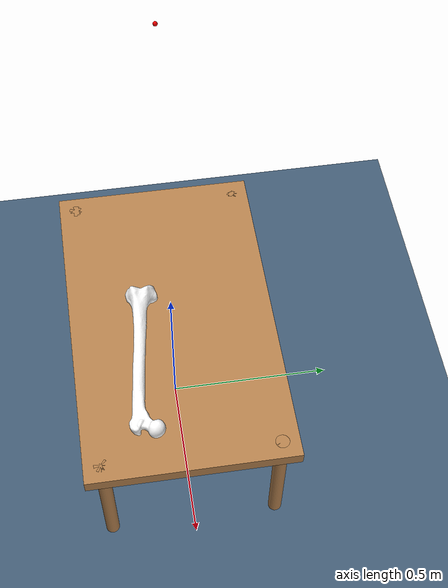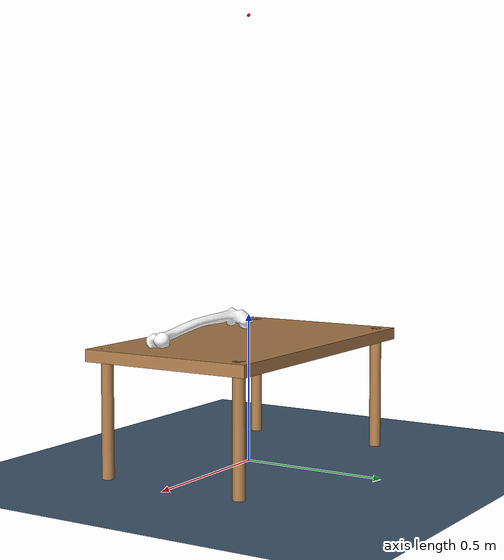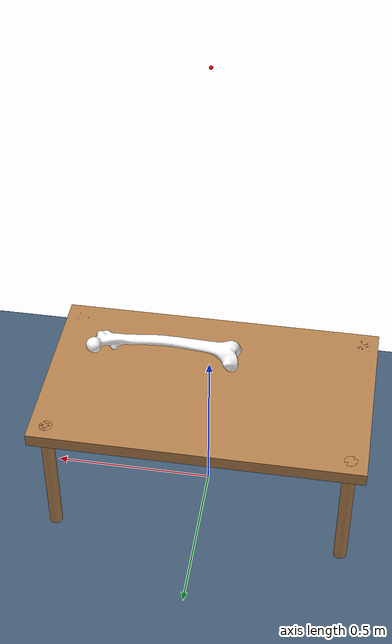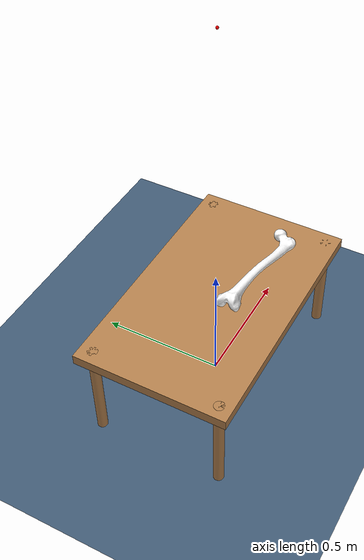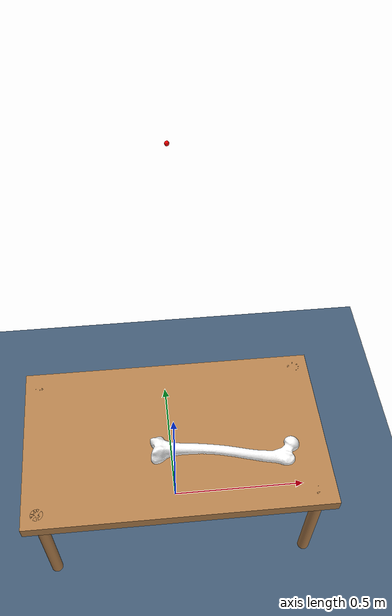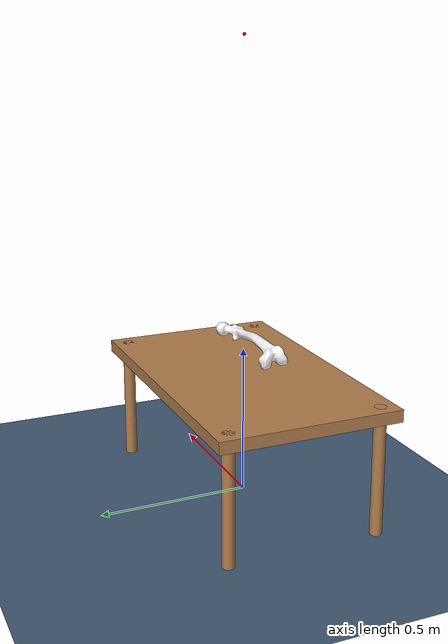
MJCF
<mujoco>
    <asset>
        <texture type="2d" name="checkerboard" builtin="checker" rgb1=".2 .3 .4" rgb2=".3 .4 .5" width="300" height="300"/>
        <material name="floor_mat" texture="checkerboard" texrepeat="5 5" texuniform="true"/>
        <mesh name="femur" file="femur_full.stl" scale="0.001 0.001 0.001"/>
        <texture type="skybox" name="sky" builtin="gradient" rgb1="0.3 0.5 0.7" rgb2="0 0 0" width="800" height="800"/>
        <texture type="2d" name="white" builtin="flat" rgb1="1 1 1" rgb2="1 1 1" width="1" height="1"/>
        <material name="femur_mat" texture="white" texuniform="true"/>
        <texture type="2d" name="wood" file="wood_tex.png"/>
        <material name="wood_mat" texture="wood" texrepeat="1 1" texuniform="true"/>
    </asset>

    <worldbody>
        <!-- Checkered surface at the bottom -->
        <geom type="plane" size="5 5 0.1" material="floor_mat"/>

        <!-- Light at the top -->
        <light pos="0 0 3" dir="0 0 -1" diffuse="1 1 1"/>

        <!-- Wooden table -->
        <body pos="0 0 0">
            <geom type="box" size="0.5 0.3 0.02" pos="0 0 0.4" material="wood_mat"/>
            <geom type="cylinder" size="0.02 0.22" pos="0.45 0.25 0.2" material="wood_mat"/>
            <geom type="cylinder" size="0.02 0.22" pos="0.45 -0.25 0.2" material="wood_mat"/>
            <geom type="cylinder" size="0.02 0.22" pos="-0.45 0.25 0.2" material="wood_mat"/>
            <geom type="cylinder" size="0.02 0.22" pos="-0.45 -0.25 0.2" material="wood_mat"/>
        </body>

        <!-- Femur mesh above the table -->
        <body pos="0.45 0 0.5">
            <geom type="mesh" mesh="femur" material="femur_mat" euler="0 0 -90"/>
        </body>

        <!-- Virtual camera body -->
        <body name="virtual_camera_body" pos="0 0 1.5">
            <!-- Joint that only allows vertical movement -->
            <joint name="virtual_camera_joint" type="slide" axis="0 0 1" range="0.7 1.5"/>
            <geom type="sphere" size="0.005" rgba="1 0 0 1" />
            <camera name="virtual_camera" mode="fixed" pos="0 0 0" fovy="64.500" xyaxes="1 0 0 0 1 0"/>
        </body>

    </worldbody>

    <visual>
        <map znear="0.01" zfar="10"/>

        <global offwidth="1440" offheight="1024"/>
    </visual>
</mujoco>

<!-- camera intrinsic info: -->
